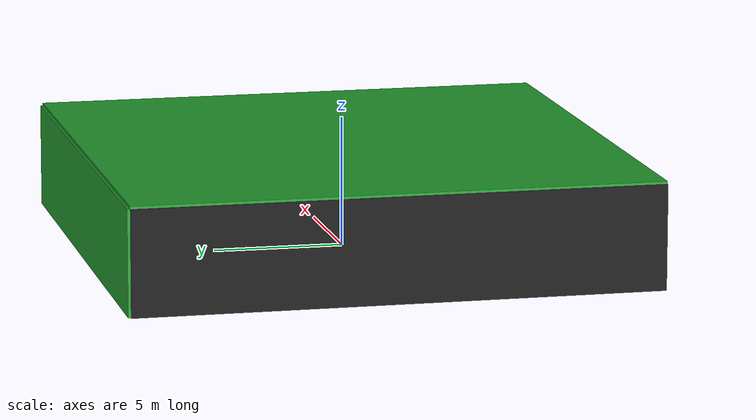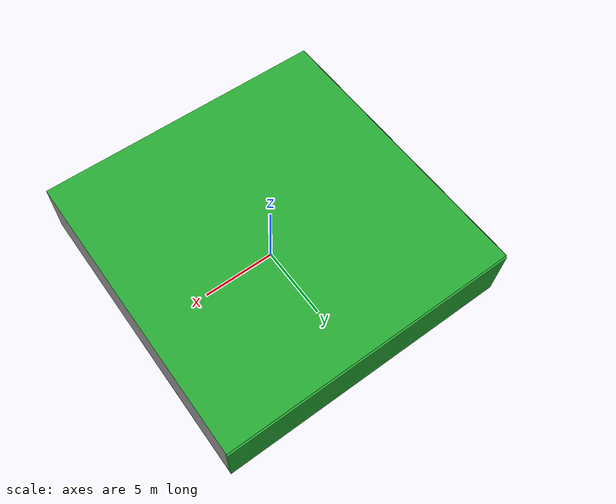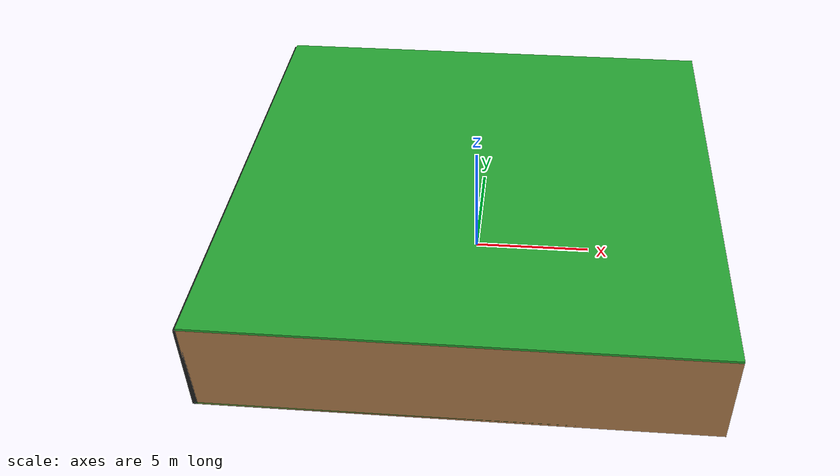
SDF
<sdf version="1.4">
 <world name="default">
  <physics type="ode">
   <max_step_size>0.001</max_step_size>
   <real_time_factor>1</real_time_factor>
   <real_time_update_rate>1000</real_time_update_rate>
   <gravity>0 0 -9.8</gravity>
  </physics>
  <scene><ambient>0.4 0.4 0.4 1</ambient><background>0.7 0.7 0.7 1</background><shadows>1</shadows></scene>
  <model name="Surrounding">
   <static>1</static>
   <link name="Ceiling">
    <collision name="Ceiling_Collision"><geometry><box><size>20 20 0.1</size></box></geometry></collision>
    <visual name="Ceiling_Visual">
     <geometry><box><size>20 20 0.1</size></box></geometry>
     <material>
      <script><uri>file://media/materials/scripts/gazebo.material</uri><name>Gazebo/GreenGlow</name></script>
     </material>
    </visual>
    <pose>0 0 4.05 0 0 0</pose>
   </link>
   <link name="Wall_South">
    <collision name="Wall_South_Collision">
     <geometry><box><size>20 0 4</size></box></geometry>
     <pose>0 0 2 0 -0 0</pose>
    </collision>
    <visual name="Wall_South_Visual">
     <pose>0 0 2 0 -0 0</pose>
     <geometry><box><size>20 0 4</size></box></geometry>
     <material>
      <script><uri>file://media/materials/scripts/gazebo.material</uri><name>Gazebo/WoodFloor</name></script>
     </material>
    </visual>
    <velocity_decay><linear>0</linear><angular>0</angular></velocity_decay>
    <pose>0 -10 0 0 -0 0</pose>
   </link>
   <link name="Wall_East">
    <collision name="Wall_21_Collision">
     <geometry><box><size>20 0 4</size></box></geometry>
     <pose>0 0 2 0 -0 0</pose>
    </collision>
    <visual name="Wall_21_Visual">
     <pose>0 0 2 0 -0 0</pose>
     <geometry><box><size>20 0 4</size></box></geometry>
     <material>
      <script><uri>file://media/materials/scripts/gazebo.material</uri><name>Gazebo/GreyGradientSky</name></script>
     </material>
    </visual>
    <velocity_decay><linear>0</linear><angular>0</angular></velocity_decay>
    <pose>10 0 0 0 -0 1.5708</pose>
   </link>
   <link name="Wall_North">
    <collision name="Wall_22_Collision">
     <geometry><box><size>20 0.2 4</size></box></geometry>
     <pose>0 0 2 0 -0 0</pose>
    </collision>
    <visual name="Wall_22_Visual">
     <pose>0 0 2 0 -0 0</pose>
     <geometry><box><size>20 0.2 4</size></box></geometry>
     <material>
      <script><uri>file://media/materials/scripts/gazebo.material</uri><name>Gazebo/Green</name></script>
     </material>
    </visual>
    <velocity_decay><linear>0</linear><angular>0</angular></velocity_decay>
    <pose>0 10 0 0 -0 0</pose>
   </link>
   <link name="Wall_West">
    <collision name="Wall_23_Collision">
     <geometry><box><size>20 0.2 4</size></box></geometry>
     <pose>0 0 2 0 -0 0</pose>
    </collision>
    <visual name="Wall_23_Visual">
     <pose>0 0 2 0 -0 0</pose>
     <geometry><box><size>20 0.2 4</size></box></geometry>
     <material>
      <script><uri>file://media/materials/scripts/gazebo.material</uri><name>Gazebo/FlatBlack</name></script>
     </material>
    </visual>
    <velocity_decay><linear>0</linear><angular>0</angular></velocity_decay>
    <pose>-10 0 0 0 0 -1.5708</pose>
   </link>
   <link name="Ground_link">
    <collision name="collision">
     <pose>0 0 .05 0 -0 0</pose>
     <geometry><box><size>20 20 0.1</size></box></geometry>
    </collision>
    <visual name="visual">
     <pose>0 0 .05 0 -0 0</pose>
     <geometry><box><size>20 20 0.1</size></box></geometry>
     <material>
      <script><uri>file://media/materials/scripts/gazebo.material</uri><name>Gazebo/GreenTransparent</name></script>
     </material>
    </visual>
   </link>
   <static>1</static>
  </model>
  <spherical_coordinates>
   <surface_model>EARTH_WGS84</surface_model>
   <latitude_deg>0</latitude_deg>
   <longitude_deg>0</longitude_deg>
   <elevation>0</elevation>
   <heading_deg>0</heading_deg>
  </spherical_coordinates>
  <light name="lightball_0" type="diffuse">
   <diffuse>0.8 0.8 0.8 1</diffuse>
   <specular>0.2 0.2 0.2 1</specular>
   <attenuation>
    <range>100</range>
    <constant>0.7</constant>
    <linear>0.01</linear>
    <quadratic>0.001</quadratic>
   </attenuation>
   <direction>-0.5 0.1 -0.9</direction>
   <pose>-6.5431619416 9.84009014005 0.845053653475 0 0 0</pose>
  </light>
  <light name="lightball_1" type="diffuse">
   <diffuse>0.8 0.8 0.8 1</diffuse>
   <specular>0.2 0.2 0.2 1</specular>
   <attenuation>
    <range>100</range>
    <constant>0.7</constant>
    <linear>0.01</linear>
    <quadratic>0.001</quadratic>
   </attenuation>
   <direction>-0.5 0.1 -0.9</direction>
   <pose>-6.16491227977 2.65375163393 1.0605772943 0 0 0</pose>
  </light>
  <light name="lightball_2" type="diffuse">
   <diffuse>0.8 0.8 0.8 1</diffuse>
   <specular>0.2 0.2 0.2 1</specular>
   <attenuation>
    <range>100</range>
    <constant>0.7</constant>
    <linear>0.01</linear>
    <quadratic>0.001</quadratic>
   </attenuation>
   <direction>-0.5 0.1 -0.9</direction>
   <pose>1.66769590672 -8.74837296796 0.788937473969 0 0 0</pose>
  </light>
  <light name="lightball_3" type="diffuse">
   <diffuse>0.8 0.8 0.8 1</diffuse>
   <specular>0.2 0.2 0.2 1</specular>
   <attenuation>
    <range>100</range>
    <constant>0.7</constant>
    <linear>0.01</linear>
    <quadratic>0.001</quadratic>
   </attenuation>
   <direction>-0.5 0.1 -0.9</direction>
   <pose>-9.54741745819 -3.50841589439 2.59490609781 0 0 0</pose>
  </light>
  <light name="lightball_4" type="diffuse">
   <diffuse>0.8 0.8 0.8 1</diffuse>
   <specular>0.2 0.2 0.2 1</specular>
   <attenuation>
    <range>100</range>
    <constant>0.7</constant>
    <linear>0.01</linear>
    <quadratic>0.001</quadratic>
   </attenuation>
   <direction>-0.5 0.1 -0.9</direction>
   <pose>0.62187538993 4.94817384113 2.76803669586 0 0 0</pose>
  </light>
  <light name="lightball_5" type="diffuse">
   <diffuse>0.8 0.8 0.8 1</diffuse>
   <specular>0.2 0.2 0.2 1</specular>
   <attenuation>
    <range>100</range>
    <constant>0.7</constant>
    <linear>0.01</linear>
    <quadratic>0.001</quadratic>
   </attenuation>
   <direction>-0.5 0.1 -0.9</direction>
   <pose>1.77463960041 9.40923350148 1.2897159903 0 0 0</pose>
  </light>
  <light name="lightball_6" type="diffuse">
   <diffuse>0.8 0.8 0.8 1</diffuse>
   <specular>0.2 0.2 0.2 1</specular>
   <attenuation>
    <range>100</range>
    <constant>0.7</constant>
    <linear>0.01</linear>
    <quadratic>0.001</quadratic>
   </attenuation>
   <direction>-0.5 0.1 -0.9</direction>
   <pose>-7.53927439976 6.91656486318 3.00558047777 0 0 0</pose>
  </light>
  <light name="lightball_7" type="diffuse">
   <diffuse>0.8 0.8 0.8 1</diffuse>
   <specular>0.2 0.2 0.2 1</specular>
   <attenuation>
    <range>100</range>
    <constant>0.7</constant>
    <linear>0.01</linear>
    <quadratic>0.001</quadratic>
   </attenuation>
   <direction>-0.5 0.1 -0.9</direction>
   <pose>-1.04542086707 -6.35801194263 1.32799408805 0 0 0</pose>
  </light>
  <light name="lightball_8" type="diffuse">
   <diffuse>0.8 0.8 0.8 1</diffuse>
   <specular>0.2 0.2 0.2 1</specular>
   <attenuation>
    <range>100</range>
    <constant>0.7</constant>
    <linear>0.01</linear>
    <quadratic>0.001</quadratic>
   </attenuation>
   <direction>-0.5 0.1 -0.9</direction>
   <pose>-4.34703147477 -8.70526364458 2.73191051624 0 0 0</pose>
  </light>
  <light name="lightball_9" type="diffuse">
   <diffuse>0.8 0.8 0.8 1</diffuse>
   <specular>0.2 0.2 0.2 1</specular>
   <attenuation>
    <range>100</range>
    <constant>0.7</constant>
    <linear>0.01</linear>
    <quadratic>0.001</quadratic>
   </attenuation>
   <direction>-0.5 0.1 -0.9</direction>
   <pose>1.86180942771 8.29901645589 3.05837494579 0 0 0</pose>
  </light>
  <light name="lightball_10" type="diffuse">
   <diffuse>0.8 0.8 0.8 1</diffuse>
   <specular>0.2 0.2 0.2 1</specular>
   <attenuation>
    <range>100</range>
    <constant>0.7</constant>
    <linear>0.01</linear>
    <quadratic>0.001</quadratic>
   </attenuation>
   <direction>-0.5 0.1 -0.9</direction>
   <pose>-6.8066944507 -1.72971641748 2.20547698683 0 0 0</pose>
  </light>
  <include><uri>model://cabinet</uri><pose>-0.851048527876 5.28088844206 0 0 0 1.910277164</pose></include>
  <include><uri>model://cabinet</uri><pose>1.54843027412 -5.29190888154 0 0 0 0.331059916132</pose></include>
  <include><uri>model://cabinet</uri><pose>4.99479770646 -1.46193517109 0 0 0 0.660747304887</pose></include>
  <include><uri>model://table</uri><pose>7.08365162138 -8.15127294241 0 0 0 1.54066577928</pose></include>
 </world>
</sdf>

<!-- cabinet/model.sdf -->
<sdf version="1.5">
  <model name="cabinet">
    <static>true</static>
    <link name="cabinet_bottom_plate">
      <inertial>
        <pose>0 0 -1 0 0 0</pose>
        <inertia>
          <ixx>2.050000</ixx>
          <ixy>0</ixy>
          <ixz>0</ixz>
          <iyy>2.050000</iyy>
          <iyz>0</iyz>
          <izz>2.050000</izz>
        </inertia>
        <mass>25.000000</mass>
      </inertial>
      <collision name="cabinet_bottom_plate_geom">
        <pose>0 0 0.010000 0 0 0</pose>
        <geometry>
          <box>
            <size>0.450000 0.450000 0.020000</size>
          </box>
        </geometry>
      </collision>
      <visual name="cabinet_bottom_plate_geom_visual">
        <pose>0 0 0.010000 0 0 0</pose>
        <geometry>
          <box>
            <size>0.450000 0.450000 0.020000</size>
          </box>
        </geometry>
        <material>
          <script>
            <uri>model://media/materials/scripts/gazebo.material</uri>
            <name>Gazebo/Wood</name>
          </script>
        </material>
      </visual>
      <collision name="cabinet_bottom_plate_geom_cabinet_back_plate">
        <pose>0.235000 0 0.510000 0 0 0</pose>
        <geometry>
          <box>
            <size>0.020000 0.450000 1.020000</size>
          </box>
        </geometry>
      </collision>
      <visual name="cabinet_bottom_plate_geom_cabinet_back_plate_visual">
        <pose>0.235000 0 0.510000 0 0 0</pose>
        <geometry>
          <box>
            <size>0.020000 0.450000 1.020000</size>
          </box>
        </geometry>
        <material>
          <script>
            <uri>model://media/materials/scripts/gazebo.material</uri>
            <name>Gazebo/Wood</name>
          </script>
        </material>
      </visual>
      <collision name="cabinet_bottom_plate_geom_cabinet_left_plate">
        <pose>0 0.235000 0.510000 0 0 0</pose>
        <geometry>
          <box>
            <size>0.450000 0.020000 1.020000</size>
          </box>
        </geometry>
      </collision>
      <visual name="cabinet_bottom_plate_geom_cabinet_left_plate_visual">
        <pose>0 0.235000 0.510000 0 0 0</pose>
        <geometry>
          <box>
            <size>0.450000 0.020000 1.020000</size>
          </box>
        </geometry>
        <material>
          <script>
            <uri>model://media/materials/scripts/gazebo.material</uri>
            <name>Gazebo/Wood</name>
          </script>
        </material>
      </visual>
      <collision name="cabinet_bottom_plate_geom_cabinet_middle_plate">
        <pose>0 0 0.510000 0 0 0</pose>
        <geometry>
          <box>
            <size>0.450000 0.450000 0.020000</size>
          </box>
        </geometry>
      </collision>
      <visual name="cabinet_bottom_plate_geom_cabinet_middle_plate_visual">
        <pose>0 0 0.510000 0 0 0</pose>
        <geometry>
          <box>
            <size>0.450000 0.450000 0.020000</size>
          </box>
        </geometry>
        <material>
          <script>
            <uri>model://media/materials/scripts/gazebo.material</uri>
            <name>Gazebo/Wood</name>
          </script>
        </material>
      </visual>
      <collision name="cabinet_bottom_plate_geom_cabinet_right_plate">
        <pose>0 -0.235000 0.510000 0 0 0</pose>
        <geometry>
          <box>
            <size>0.450000 0.020000 1.020000</size>
          </box>
        </geometry>
      </collision>
      <visual name="cabinet_bottom_plate_geom_cabinet_right_plate_visual">
        <pose>0 -0.235000 0.510000 0 0 0</pose>
        <geometry>
          <box>
            <size>0.450000 0.020000 1.020000</size>
          </box>
        </geometry>
        <material>
          <script>
            <uri>model://media/materials/scripts/gazebo.material</uri>
            <name>Gazebo/Wood</name>
          </script>
        </material>
      </visual>
      <collision name="cabinet_bottom_plate_geom_cabinet_top_plate">
        <pose>0 0 1.010000 0 0 0</pose>
        <geometry>
          <box>
            <size>0.450000 0.450000 0.020000</size>
          </box>
        </geometry>
      </collision>
      <visual name="cabinet_bottom_plate_geom_cabinet_top_plate_visual">
        <pose>0 0 1.010000 0 0 0</pose>
        <geometry>
          <box>
            <size>0.450000 0.450000 0.020000</size>
          </box>
        </geometry>
        <material>
          <script>
            <uri>model://media/materials/scripts/gazebo.material</uri>
            <name>Gazebo/Wood</name>
          </script>
        </material>
      </visual>
    </link>
  </model>
</sdf>

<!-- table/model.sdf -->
<sdf version="1.5">
  <model name="table">
    <static>true</static>
    <link name="link">
      <collision name="surface">
        <pose>0 0 1.0 0 0 0</pose>
        <geometry>
          <box>
            <size>1.5 0.8 0.03</size>
          </box>
        </geometry>
        <surface>
          <friction>
            <ode>
              <mu>0.6</mu>
              <mu2>0.6</mu2>
            </ode>
          </friction>
        </surface>
      </collision>
      <visual name="visual1">
        <pose>0 0 1.0 0 0 0</pose>
        <geometry>
          <box>
            <size>1.5 0.8 0.03</size>
          </box>
        </geometry>
        <material>
          <script>
            <uri>model://media/materials/scripts/gazebo.material</uri>
            <name>Gazebo/Wood</name>
          </script>
        </material>
      </visual>
      <collision name="front_left_leg">
        <pose>0.68 0.38 0.5 0 0 0</pose>
        <geometry>
          <cylinder>
            <radius>0.02</radius>
            <length>1.0</length>
          </cylinder>
        </geometry>
      </collision>
      <visual name="front_left_leg">
        <pose>0.68 0.38 0.5 0 0 0</pose>
        <geometry>
          <cylinder>
            <radius>0.02</radius>
            <length>1.0</length>
          </cylinder>
        </geometry>
        <material>
          <script>
            <uri>model://media/materials/scripts/gazebo.material</uri>
            <name>Gazebo/Grey</name>
          </script>
        </material>
      </visual>
      <collision name="front_right_leg">
        <pose>0.68 -0.38 0.5 0 0 0</pose>
        <geometry>
          <cylinder>
            <radius>0.02</radius>
            <length>1.0</length>
          </cylinder>
        </geometry>
      </collision>
      <visual name="front_right_leg">
        <pose>0.68 -0.38 0.5 0 0 0</pose>
        <geometry>
          <cylinder>
            <radius>0.02</radius>
            <length>1.0</length>
          </cylinder>
        </geometry>
        <material>
          <script>
            <uri>model://media/materials/scripts/gazebo.material</uri>
            <name>Gazebo/Grey</name>
          </script>
        </material>
      </visual>
      <collision name="back_right_leg">
        <pose>-0.68 -0.38 0.5 0 0 0</pose>
        <geometry>
          <cylinder>
            <radius>0.02</radius>
            <length>1.0</length>
          </cylinder>
        </geometry>
      </collision>
      <visual name="back_right_leg">
        <pose>-0.68 -0.38 0.5 0 0 0</pose>
        <geometry>
          <cylinder>
            <radius>0.02</radius>
            <length>1.0</length>
          </cylinder>
        </geometry>
        <material>
          <script>
            <uri>model://media/materials/scripts/gazebo.material</uri>
            <name>Gazebo/Grey</name>
          </script>
        </material>
      </visual>
      <collision name="back_left_leg">
        <pose>-0.68 0.38 0.5 0 0 0</pose>
        <geometry>
          <cylinder>
            <radius>0.02</radius>
            <length>1.0</length>
          </cylinder>
        </geometry>
      </collision>
      <visual name="back_left_leg">
        <pose>-0.68 0.38 0.5 0 0 0</pose>
        <geometry>
          <cylinder>
            <radius>0.02</radius>
            <length>1.0</length>
          </cylinder>
        </geometry>
        <material>
          <script>
            <uri>model://media/materials/scripts/gazebo.material</uri>
            <name>Gazebo/Grey</name>
          </script>
        </material>
      </visual>
    </link>
  </model>
</sdf>
